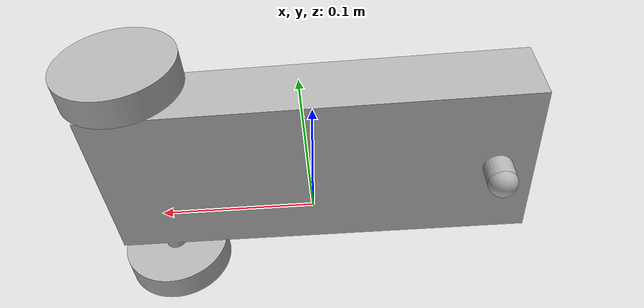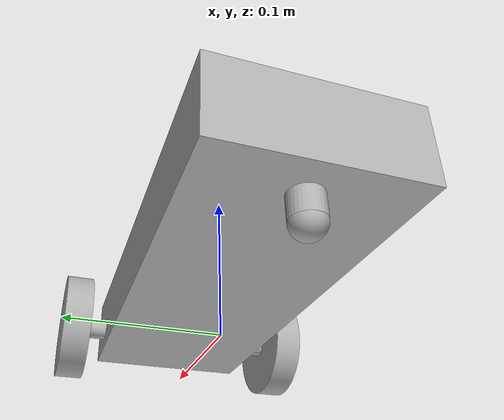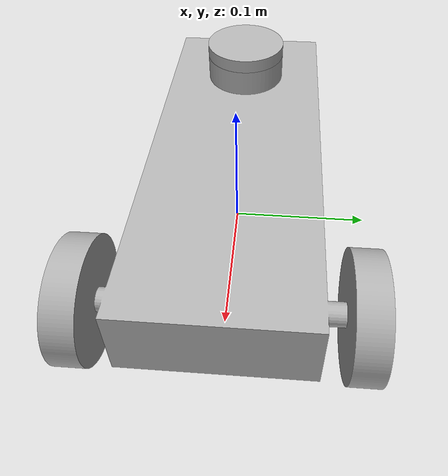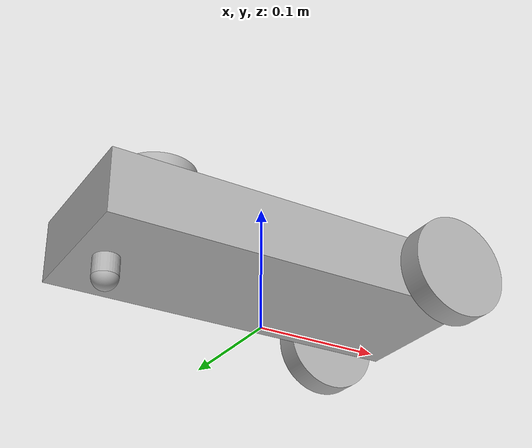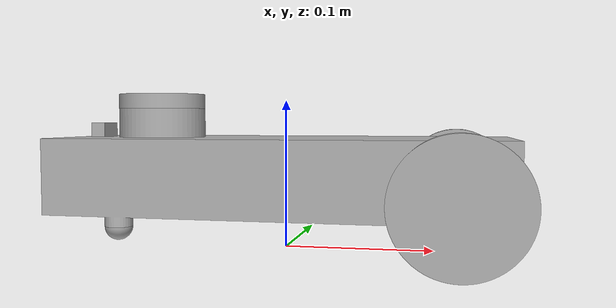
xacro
<?xml version="1.0" ?>
<robot name="mobile_robot" xmlns:xacro="http://www.ros.org/wiki/xacro">

<xacro:include filename="$(find mobile_robot_description)/urdf/materials.xacro" />
<xacro:include filename="$(find mobile_robot_description)/urdf/mobile_robot.trans" />
<xacro:include filename="$(find mobile_robot_description)/urdf/mobile_robot.gazebo" />
<link name="base_link">
  <inertial>
    <origin xyz="-0.002715560508885082 -9.745129932985736e-18 0.05094989391420786" rpy="0 0 0"/>
    <mass value="14.652515580631277"/>
    <inertia ixx="0.020781" iyy="0.114226" izz="0.12794" ixy="-0.0" iyz="-0.0" ixz="0.001258"/>
  </inertial>
  <visual>
    <origin xyz="0 0 0" rpy="0 0 0"/>
    <geometry>
      <mesh filename="file://$(find mobile_robot_description)/meshes/base_link.stl" scale="0.001 0.001 0.001"/>
    </geometry>
    <material name="silver"/>
  </visual>
  <collision>
    <origin xyz="0 0 0" rpy="0 0 0"/>
    <geometry>
      <mesh filename="file://$(find mobile_robot_description)/meshes/base_link.stl" scale="0.001 0.001 0.001"/>
    </geometry>
  </collision>
</link>

<link name="lidar_1">
  <inertial>
    <origin xyz="0.0 -5.0260617188559274e-18 0.004999999999999977" rpy="0 0 0"/>
    <mass value="0.22195352097611887"/>
    <inertia ixx="5.2e-05" iyy="5.2e-05" izz="0.0001" ixy="-0.0" iyz="0.0" ixz="0.0"/>
  </inertial>
  <visual>
    <origin xyz="0.09 -0.0 -0.095" rpy="0 0 0"/>
    <geometry>
      <mesh filename="file://$(find mobile_robot_description)/meshes/lidar_1.stl" scale="0.001 0.001 0.001"/>
    </geometry>
    <material name="silver"/>
  </visual>
  <collision>
    <origin xyz="0.09 -0.0 -0.095" rpy="0 0 0"/>
    <geometry>
      <mesh filename="file://$(find mobile_robot_description)/meshes/lidar_1.stl" scale="0.001 0.001 0.001"/>
    </geometry>
  </collision>
</link>

<link name="camera_1">
  <inertial>
    <origin xyz="0.014999999999999986 0.0 0.0050000000000000044" rpy="0 0 0"/>
    <mass value="0.0157"/>
    <inertia ixx="1e-06" iyy="0.0" izz="1e-06" ixy="0.0" iyz="0.0" ixz="0.0"/>
  </inertial>
  <visual>
    <origin xyz="0.15 -0.0 -0.075" rpy="0 0 0"/>
    <geometry>
      <mesh filename="file://$(find mobile_robot_description)/meshes/camera_1.stl" scale="0.001 0.001 0.001"/>
    </geometry>
    <material name="silver"/>
  </visual>
  <collision>
    <origin xyz="0.15 -0.0 -0.075" rpy="0 0 0"/>
    <geometry>
      <mesh filename="file://$(find mobile_robot_description)/meshes/camera_1.stl" scale="0.001 0.001 0.001"/>
    </geometry>
  </collision>
</link>

<link name="left_wheel_1">
  <inertial>
    <origin xyz="0.0 -0.010000000000000009 -6.938893903907228e-18" rpy="0 0 0"/>
    <mass value="0.789168074581756"/>
    <inertia ixx="0.000342" iyy="0.000631" izz="0.000342" ixy="0.0" iyz="-0.0" ixz="0.0"/>
  </inertial>
  <visual>
    <origin xyz="-0.115 0.075 -0.04" rpy="0 0 0"/>
    <geometry>
      <mesh filename="file://$(find mobile_robot_description)/meshes/left_wheel_1.stl" scale="0.001 0.001 0.001"/>
    </geometry>
    <material name="silver"/>
  </visual>
  <collision>
    <origin xyz="-0.115 0.075 -0.04" rpy="0 0 0"/>
    <geometry>
      <mesh filename="file://$(find mobile_robot_description)/meshes/left_wheel_1.stl" scale="0.001 0.001 0.001"/>
    </geometry>
  </collision>
</link>

<link name="right_wheel_1">
  <inertial>
    <origin xyz="0.0 0.010000000000000009 -6.938893903907228e-18" rpy="0 0 0"/>
    <mass value="0.789168074581756"/>
    <inertia ixx="0.000342" iyy="0.000631" izz="0.000342" ixy="0.0" iyz="0.0" ixz="0.0"/>
  </inertial>
  <visual>
    <origin xyz="-0.115 -0.075 -0.04" rpy="0 0 0"/>
    <geometry>
      <mesh filename="file://$(find mobile_robot_description)/meshes/right_wheel_1.stl" scale="0.001 0.001 0.001"/>
    </geometry>
    <material name="silver"/>
  </visual>
  <collision>
    <origin xyz="-0.115 -0.075 -0.04" rpy="0 0 0"/>
    <geometry>
      <mesh filename="file://$(find mobile_robot_description)/meshes/right_wheel_1.stl" scale="0.001 0.001 0.001"/>
    </geometry>
  </collision>
</link>

<link name="caster_wheel_1">
  <inertial>
    <origin xyz="0.0 2.120369787642346e-18 -0.003749999999999999" rpy="0 0 0"/>
    <mass value="0.016441001553786576"/>
    <inertia ixx="0.0" iyy="0.0" izz="1e-06" ixy="0.0" iyz="0.0" ixz="-0.0"/>
  </inertial>
  <visual>
    <origin xyz="0.125 -0.0 -0.01" rpy="0 0 0"/>
    <geometry>
      <mesh filename="file://$(find mobile_robot_description)/meshes/caster_wheel_1.stl" scale="0.001 0.001 0.001"/>
    </geometry>
    <material name="silver"/>
  </visual>
  <collision>
    <origin xyz="0.125 -0.0 -0.01" rpy="0 0 0"/>
    <geometry>
      <mesh filename="file://$(find mobile_robot_description)/meshes/caster_wheel_1.stl" scale="0.001 0.001 0.001"/>
    </geometry>
  </collision>
</link>

<joint name="lidar_joint" type="fixed">
  <origin xyz="-0.09 0.0 0.095" rpy="0 0 0"/>
  <parent link="base_link"/>
  <child link="lidar_1"/>
</joint>

<joint name="camera_joint" type="fixed">
  <origin xyz="-0.15 0.0 0.075" rpy="0 0 0"/>
  <parent link="base_link"/>
  <child link="camera_1"/>
</joint>

<joint name="left_wheel_joint" type="continuous">
  <origin xyz="0.115 -0.075 0.04" rpy="0 0 0"/>
  <parent link="base_link"/>
  <child link="left_wheel_1"/>
  <axis xyz="0.0 -1.0 0.0"/>
</joint>

<joint name="right_wheel_joint" type="continuous">
  <origin xyz="0.115 0.075 0.04" rpy="0 0 0"/>
  <parent link="base_link"/>
  <child link="right_wheel_1"/>
  <axis xyz="0.0 1.0 0.0"/>
</joint>

<joint name="caster_wheel_joint" type="fixed">
  <origin xyz="-0.125 0.0 0.01" rpy="0 0 0"/>
  <parent link="base_link"/>
  <child link="caster_wheel_1"/>
</joint>

</robot>

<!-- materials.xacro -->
<robot name="mobile_robot" xmlns:xacro="http://www.ros.org/wiki/xacro" >

<material name="silver">
  <color rgba="0.700 0.700 0.700 1.000"/>
</material>

</robot>

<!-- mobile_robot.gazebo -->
<robot name="mobile_robot" xmlns:xacro="http://www.ros.org/wiki/xacro" >

<xacro:property name="body_color" value="Gazebo/Silver" />

<gazebo>
  <plugin name="control" filename="libgazebo_ros_control.so"/>
</gazebo>
<gazebo reference="base_link">
  <material>${body_color}</material>
  <mu1>0.2</mu1>
  <mu2>0.2</mu2>
  <self_collide>true</self_collide>
  <gravity>true</gravity>
</gazebo>

<gazebo reference="lidar_1">
  <material>${body_color}</material>
  <mu1>0.2</mu1>
  <mu2>0.2</mu2>
  <self_collide>true</self_collide>
</gazebo>

<gazebo reference="camera_1">
  <material>${body_color}</material>
  <mu1>0.2</mu1>
  <mu2>0.2</mu2>
  <self_collide>true</self_collide>
</gazebo>

<gazebo reference="left_wheel_1">
  <material>${body_color}</material>
  <mu1>0.2</mu1>
  <mu2>0.2</mu2>
  <self_collide>true</self_collide>
</gazebo>

<gazebo reference="right_wheel_1">
  <material>${body_color}</material>
  <mu1>0.2</mu1>
  <mu2>0.2</mu2>
  <self_collide>true</self_collide>
</gazebo>

<gazebo reference="caster_wheel_1">
  <material>${body_color}</material>
  <mu1>0.2</mu1>
  <mu2>0.2</mu2>
  <self_collide>true</self_collide>
</gazebo>

</robot>
